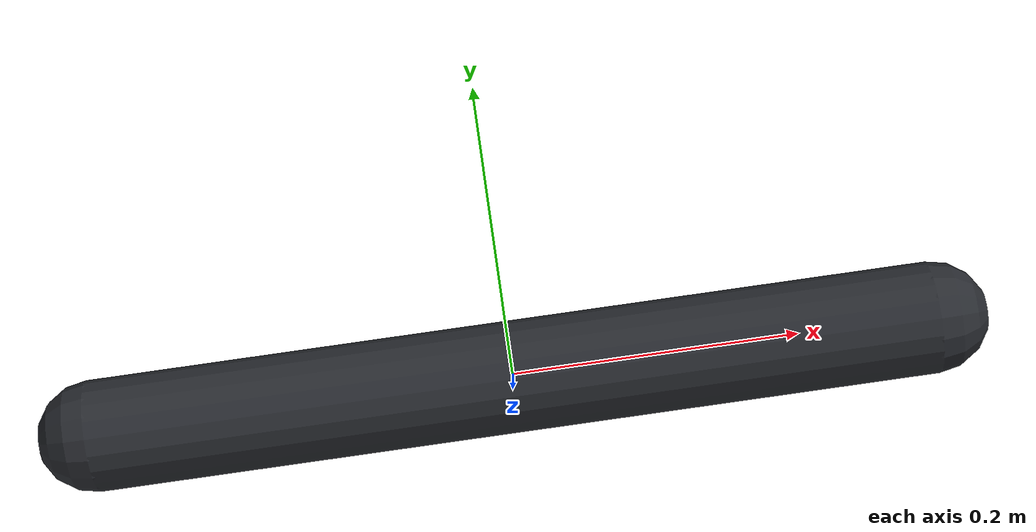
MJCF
<mujoco model="stick_prim_black_38">
  <compiler angle="radian"/>
  <asset>
  </asset>
  <worldbody>
    <body name="stick_prim_black_38">
      <freejoint/>
      <geom name="stick_prim_black_38_g0" type="capsule" size="0.038" fromto="-0.287 0 0.038 0.287 0 0.038" rgba="0.16 0.17 0.19 1" mass="0.05" friction="0.05 0.05 0.005" condim="4"/>
    </body>
  </worldbody>
</mujoco>
